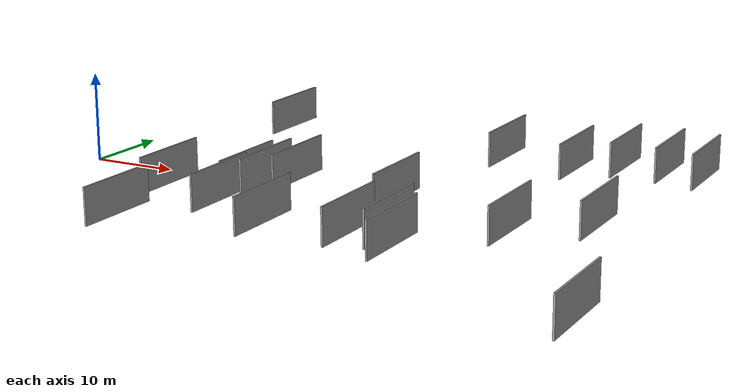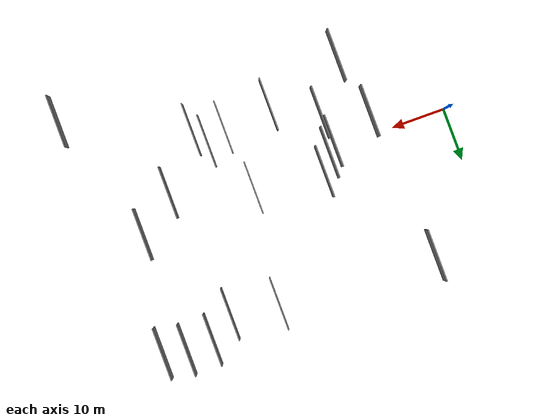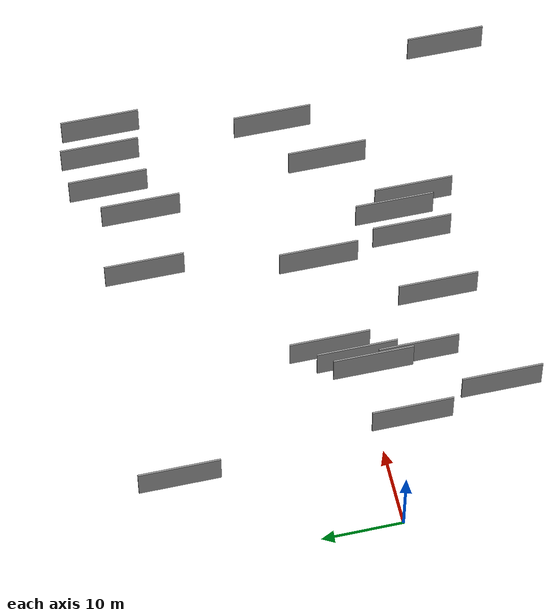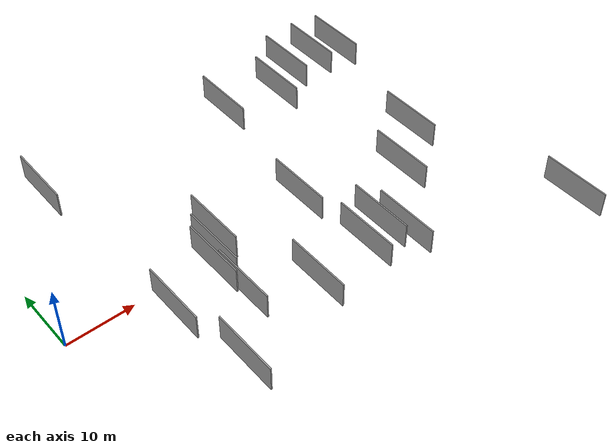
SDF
<sdf version="1.6">
 <world name="default">
  <scene>
   <sky><clouds><speed>12</speed></clouds></sky>
   <ambient>0.4 0.4 0.4 1</ambient>
   <background>0.7 0.7 0.7 1</background>
   <shadows>1</shadows>
  </scene>
  <gravity>0 0 -9.8066</gravity>
  <magnetic_field>6e-06 2.3e-05 -4.2e-05</magnetic_field>
  <physics default="0" name="default_physics" type="ode">
   <ode>
    <solver>
     <type>quick</type>
     <iters>10</iters>
     <sor>1.0</sor>
     <use_dynamic_moi_rescaling>0</use_dynamic_moi_rescaling>
    </solver>
    <constraints>
     <cfm>0</cfm>
     <erp>0.2</erp>
     <contact_max_correcting_vel>100</contact_max_correcting_vel>
     <contact_surface_layer>0.001</contact_surface_layer>
    </constraints>
   </ode>
   <max_step_size>0.004</max_step_size>
   <real_time_factor>1</real_time_factor>
   <real_time_update_rate>250</real_time_update_rate>
  </physics>
  <light name="sun" type="directional">
   <pose>0 0 10 0 0 0</pose>
   <diffuse>0.8 0.8 0.8 1</diffuse>
   <specular>0.2 0.2 0.2 1</specular>
   <attenuation>
    <range>1000</range>
    <constant>0.9</constant>
    <linear>0.01</linear>
    <quadratic>0.001</quadratic>
   </attenuation>
   <direction>-0.5 0.1 -0.9</direction>
  </light>
  <model name="grey_wall_1">
   <static>1</static>
   <pose>63.9513 24.1016 0.0 0.000000 0.000000 1.570796</pose>
   <link name="link">
    <pose>0 0 2.00 0 0 0</pose>
    <collision name="collision"><geometry><box><size>10.00 0.2 4.00</size></box></geometry></collision>
    <visual name="visual">
     <cast_shadows>0</cast_shadows>
     <geometry><box><size>10.00 0.2 4.00</size></box></geometry>
     <material>
      <script>
       <uri>model://grey_wall/materials/scripts</uri>
       <uri>model://grey_wall/materials/textures</uri>
       <name>vrc/grey_wall</name>
      </script>
     </material>
    </visual>
   </link>
  </model>
  <model name="grey_wall_2">
   <static>1</static>
   <pose>30.0684 -11.8076 0.0 0.000000 0.000000 1.570796</pose>
   <link name="link">
    <pose>0 0 2.00 0 0 0</pose>
    <collision name="collision"><geometry><box><size>10.00 0.2 4.00</size></box></geometry></collision>
    <visual name="visual">
     <cast_shadows>0</cast_shadows>
     <geometry><box><size>10.00 0.2 4.00</size></box></geometry>
     <material>
      <script>
       <uri>model://grey_wall/materials/scripts</uri>
       <uri>model://grey_wall/materials/textures</uri>
       <name>vrc/grey_wall</name>
      </script>
     </material>
    </visual>
   </link>
  </model>
  <model name="grey_wall_3">
   <static>1</static>
   <pose>54.5035 24.8573 0.0 0.000000 0.000000 1.570796</pose>
   <link name="link">
    <pose>0 0 2.00 0 0 0</pose>
    <collision name="collision"><geometry><box><size>10.00 0.2 4.00</size></box></geometry></collision>
    <visual name="visual">
     <cast_shadows>0</cast_shadows>
     <geometry><box><size>10.00 0.2 4.00</size></box></geometry>
     <material>
      <script>
       <uri>model://grey_wall/materials/scripts</uri>
       <uri>model://grey_wall/materials/textures</uri>
       <name>vrc/grey_wall</name>
      </script>
     </material>
    </visual>
   </link>
  </model>
  <model name="grey_wall_4">
   <static>1</static>
   <pose>21.7196 -7.2167 0.0 0.000000 0.000000 1.570796</pose>
   <link name="link">
    <pose>0 0 2.00 0 0 0</pose>
    <collision name="collision"><geometry><box><size>10.00 0.2 4.00</size></box></geometry></collision>
    <visual name="visual">
     <cast_shadows>0</cast_shadows>
     <geometry><box><size>10.00 0.2 4.00</size></box></geometry>
     <material>
      <script>
       <uri>model://grey_wall/materials/scripts</uri>
       <uri>model://grey_wall/materials/textures</uri>
       <name>vrc/grey_wall</name>
      </script>
     </material>
    </visual>
   </link>
  </model>
  <model name="grey_wall_5">
   <static>1</static>
   <pose>21.3054 -1.4818 0.0 0.000000 0.000000 1.570796</pose>
   <link name="link">
    <pose>0 0 2.00 0 0 0</pose>
    <collision name="collision"><geometry><box><size>10.00 0.2 4.00</size></box></geometry></collision>
    <visual name="visual">
     <cast_shadows>0</cast_shadows>
     <geometry><box><size>10.00 0.2 4.00</size></box></geometry>
     <material>
      <script>
       <uri>model://grey_wall/materials/scripts</uri>
       <uri>model://grey_wall/materials/textures</uri>
       <name>vrc/grey_wall</name>
      </script>
     </material>
    </visual>
   </link>
  </model>
  <model name="grey_wall_6">
   <static>1</static>
   <pose>67.3565 -22.3016 0.0 0.000000 0.000000 1.570796</pose>
   <link name="link">
    <pose>0 0 2.00 0 0 0</pose>
    <collision name="collision"><geometry><box><size>10.00 0.2 4.00</size></box></geometry></collision>
    <visual name="visual">
     <cast_shadows>0</cast_shadows>
     <geometry><box><size>10.00 0.2 4.00</size></box></geometry>
     <material>
      <script>
       <uri>model://grey_wall/materials/scripts</uri>
       <uri>model://grey_wall/materials/textures</uri>
       <name>vrc/grey_wall</name>
      </script>
     </material>
    </visual>
   </link>
  </model>
  <model name="grey_wall_7">
   <static>1</static>
   <pose>39.2232 -10.7783 0.0 0.000000 0.000000 1.570796</pose>
   <link name="link">
    <pose>0 0 2.00 0 0 0</pose>
    <collision name="collision"><geometry><box><size>10.00 0.2 4.00</size></box></geometry></collision>
    <visual name="visual">
     <cast_shadows>0</cast_shadows>
     <geometry><box><size>10.00 0.2 4.00</size></box></geometry>
     <material>
      <script>
       <uri>model://grey_wall/materials/scripts</uri>
       <uri>model://grey_wall/materials/textures</uri>
       <name>vrc/grey_wall</name>
      </script>
     </material>
    </visual>
   </link>
  </model>
  <model name="grey_wall_8">
   <static>1</static>
   <pose>13.1606 -4.3331 0.0 0.000000 0.000000 1.570796</pose>
   <link name="link">
    <pose>0 0 2.00 0 0 0</pose>
    <collision name="collision"><geometry><box><size>10.00 0.2 4.00</size></box></geometry></collision>
    <visual name="visual">
     <cast_shadows>0</cast_shadows>
     <geometry><box><size>10.00 0.2 4.00</size></box></geometry>
     <material>
      <script>
       <uri>model://grey_wall/materials/scripts</uri>
       <uri>model://grey_wall/materials/textures</uri>
       <name>vrc/grey_wall</name>
      </script>
     </material>
    </visual>
   </link>
  </model>
  <model name="grey_wall_9">
   <static>1</static>
   <pose>24.7222 3.1588 0.0 0.000000 0.000000 1.570796</pose>
   <link name="link">
    <pose>0 0 2.00 0 0 0</pose>
    <collision name="collision"><geometry><box><size>10.00 0.2 4.00</size></box></geometry></collision>
    <visual name="visual">
     <cast_shadows>0</cast_shadows>
     <geometry><box><size>10.00 0.2 4.00</size></box></geometry>
     <material>
      <script>
       <uri>model://grey_wall/materials/scripts</uri>
       <uri>model://grey_wall/materials/textures</uri>
       <name>vrc/grey_wall</name>
      </script>
     </material>
    </visual>
   </link>
  </model>
  <model name="grey_wall_10">
   <static>1</static>
   <pose>15.3575 -15.9654 0.0 0.000000 0.000000 1.570796</pose>
   <link name="link">
    <pose>0 0 2.00 0 0 0</pose>
    <collision name="collision"><geometry><box><size>10.00 0.2 4.00</size></box></geometry></collision>
    <visual name="visual">
     <cast_shadows>0</cast_shadows>
     <geometry><box><size>10.00 0.2 4.00</size></box></geometry>
     <material>
      <script>
       <uri>model://grey_wall/materials/scripts</uri>
       <uri>model://grey_wall/materials/textures</uri>
       <name>vrc/grey_wall</name>
      </script>
     </material>
    </visual>
   </link>
  </model>
  <model name="grey_wall_11">
   <static>1</static>
   <pose>40.8725 22.8842 0.0 0.000000 0.000000 1.570796</pose>
   <link name="link">
    <pose>0 0 2.00 0 0 0</pose>
    <collision name="collision"><geometry><box><size>10.00 0.2 4.00</size></box></geometry></collision>
    <visual name="visual">
     <cast_shadows>0</cast_shadows>
     <geometry><box><size>10.00 0.2 4.00</size></box></geometry>
     <material>
      <script>
       <uri>model://grey_wall/materials/scripts</uri>
       <uri>model://grey_wall/materials/textures</uri>
       <name>vrc/grey_wall</name>
      </script>
     </material>
    </visual>
   </link>
  </model>
  <model name="grey_wall_12">
   <static>1</static>
   <pose>49.8933 21.5859 0.0 0.000000 0.000000 1.570796</pose>
   <link name="link">
    <pose>0 0 2.00 0 0 0</pose>
    <collision name="collision"><geometry><box><size>10.00 0.2 4.00</size></box></geometry></collision>
    <visual name="visual">
     <cast_shadows>0</cast_shadows>
     <geometry><box><size>10.00 0.2 4.00</size></box></geometry>
     <material>
      <script>
       <uri>model://grey_wall/materials/scripts</uri>
       <uri>model://grey_wall/materials/textures</uri>
       <name>vrc/grey_wall</name>
      </script>
     </material>
    </visual>
   </link>
  </model>
  <model name="grey_wall_13">
   <static>1</static>
   <pose>52.7940 -3.0978 0.0 0.000000 0.000000 1.570796</pose>
   <link name="link">
    <pose>0 0 2.00 0 0 0</pose>
    <collision name="collision"><geometry><box><size>10.00 0.2 4.00</size></box></geometry></collision>
    <visual name="visual">
     <cast_shadows>0</cast_shadows>
     <geometry><box><size>10.00 0.2 4.00</size></box></geometry>
     <material>
      <script>
       <uri>model://grey_wall/materials/scripts</uri>
       <uri>model://grey_wall/materials/textures</uri>
       <name>vrc/grey_wall</name>
      </script>
     </material>
    </visual>
   </link>
  </model>
  <model name="grey_wall_14">
   <static>1</static>
   <pose>10.9464 24.5991 0.0 0.000000 0.000000 1.570796</pose>
   <link name="link">
    <pose>0 0 2.00 0 0 0</pose>
    <collision name="collision"><geometry><box><size>10.00 0.2 4.00</size></box></geometry></collision>
    <visual name="visual">
     <cast_shadows>0</cast_shadows>
     <geometry><box><size>10.00 0.2 4.00</size></box></geometry>
     <material>
      <script>
       <uri>model://grey_wall/materials/scripts</uri>
       <uri>model://grey_wall/materials/textures</uri>
       <name>vrc/grey_wall</name>
      </script>
     </material>
    </visual>
   </link>
  </model>
  <model name="grey_wall_15">
   <static>1</static>
   <pose>42.9623 -9.4633 0.0 0.000000 0.000000 1.570796</pose>
   <link name="link">
    <pose>0 0 2.00 0 0 0</pose>
    <collision name="collision"><geometry><box><size>10.00 0.2 4.00</size></box></geometry></collision>
    <visual name="visual">
     <cast_shadows>0</cast_shadows>
     <geometry><box><size>10.00 0.2 4.00</size></box></geometry>
     <material>
      <script>
       <uri>model://grey_wall/materials/scripts</uri>
       <uri>model://grey_wall/materials/textures</uri>
       <name>vrc/grey_wall</name>
      </script>
     </material>
    </visual>
   </link>
  </model>
  <model name="grey_wall_16">
   <static>1</static>
   <pose>22.6311 0.2286 0.0 0.000000 0.000000 1.570796</pose>
   <link name="link">
    <pose>0 0 2.00 0 0 0</pose>
    <collision name="collision"><geometry><box><size>10.00 0.2 4.00</size></box></geometry></collision>
    <visual name="visual">
     <cast_shadows>0</cast_shadows>
     <geometry><box><size>10.00 0.2 4.00</size></box></geometry>
     <material>
      <script>
       <uri>model://grey_wall/materials/scripts</uri>
       <uri>model://grey_wall/materials/textures</uri>
       <name>vrc/grey_wall</name>
      </script>
     </material>
    </visual>
   </link>
  </model>
  <model name="grey_wall_17">
   <static>1</static>
   <pose>59.6003 24.9572 0.0 0.000000 0.000000 1.570796</pose>
   <link name="link">
    <pose>0 0 2.00 0 0 0</pose>
    <collision name="collision"><geometry><box><size>10.00 0.2 4.00</size></box></geometry></collision>
    <visual name="visual">
     <cast_shadows>0</cast_shadows>
     <geometry><box><size>10.00 0.2 4.00</size></box></geometry>
     <material>
      <script>
       <uri>model://grey_wall/materials/scripts</uri>
       <uri>model://grey_wall/materials/textures</uri>
       <name>vrc/grey_wall</name>
      </script>
     </material>
    </visual>
   </link>
  </model>
  <model name="grey_wall_18">
   <static>1</static>
   <pose>59.8368 2.4650 0.0 0.000000 0.000000 1.570796</pose>
   <link name="link">
    <pose>0 0 2.00 0 0 0</pose>
    <collision name="collision"><geometry><box><size>10.00 0.2 4.00</size></box></geometry></collision>
    <visual name="visual">
     <cast_shadows>0</cast_shadows>
     <geometry><box><size>10.00 0.2 4.00</size></box></geometry>
     <material>
      <script>
       <uri>model://grey_wall/materials/scripts</uri>
       <uri>model://grey_wall/materials/textures</uri>
       <name>vrc/grey_wall</name>
      </script>
     </material>
    </visual>
   </link>
  </model>
  <model name="grey_wall_19">
   <static>1</static>
   <pose>37.8963 1.4682 0.0 0.000000 0.000000 1.570796</pose>
   <link name="link">
    <pose>0 0 2.00 0 0 0</pose>
    <collision name="collision"><geometry><box><size>10.00 0.2 4.00</size></box></geometry></collision>
    <visual name="visual">
     <cast_shadows>0</cast_shadows>
     <geometry><box><size>10.00 0.2 4.00</size></box></geometry>
     <material>
      <script>
       <uri>model://grey_wall/materials/scripts</uri>
       <uri>model://grey_wall/materials/textures</uri>
       <name>vrc/grey_wall</name>
      </script>
     </material>
    </visual>
   </link>
  </model>
  <model name="grey_wall_20">
   <static>1</static>
   <pose>44.8805 -12.3867 0.0 0.000000 0.000000 1.570796</pose>
   <link name="link">
    <pose>0 0 2.00 0 0 0</pose>
    <collision name="collision"><geometry><box><size>10.00 0.2 4.00</size></box></geometry></collision>
    <visual name="visual">
     <cast_shadows>0</cast_shadows>
     <geometry><box><size>10.00 0.2 4.00</size></box></geometry>
     <material>
      <script>
       <uri>model://grey_wall/materials/scripts</uri>
       <uri>model://grey_wall/materials/textures</uri>
       <name>vrc/grey_wall</name>
      </script>
     </material>
    </visual>
   </link>
  </model>
 </world>
</sdf>
